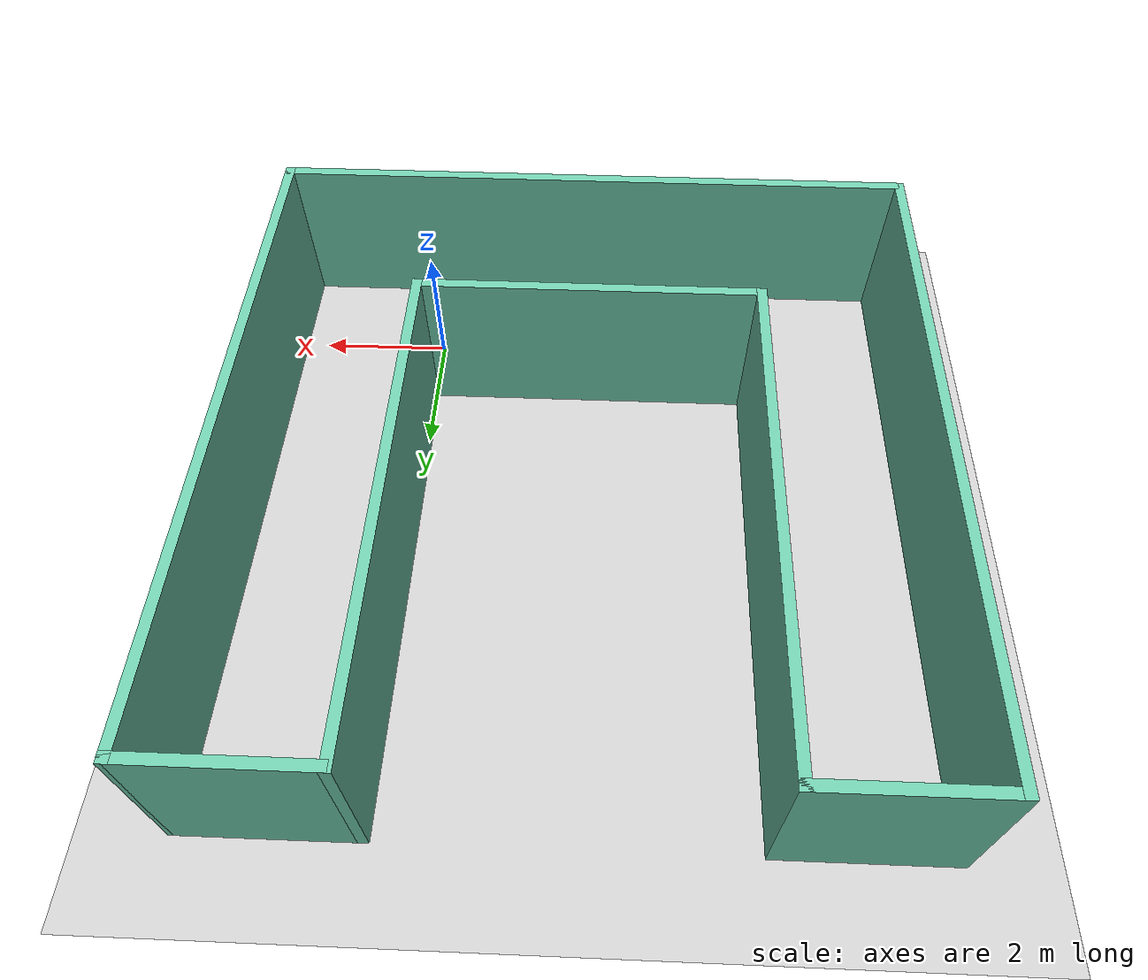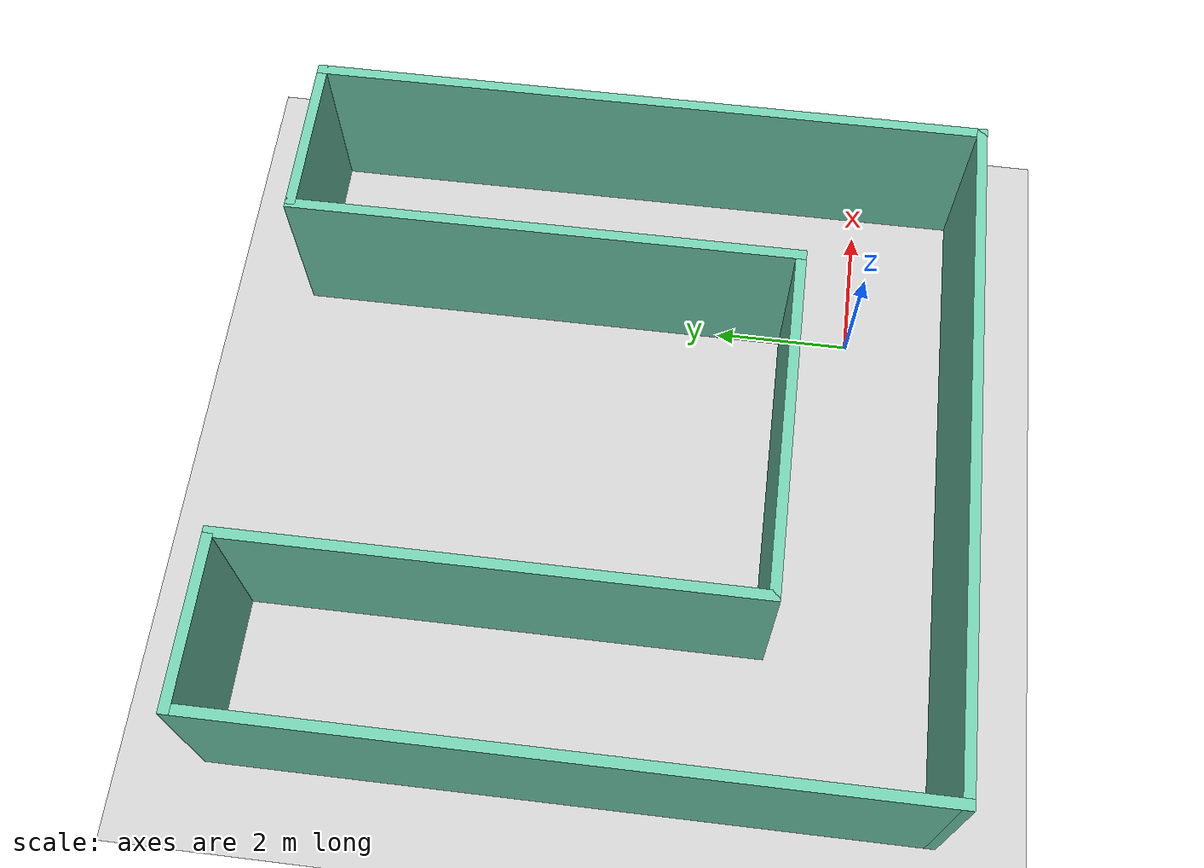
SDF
<sdf version="1.6">
 <world name="default">
  <light name="sun" type="directional">
   <pose>0 0 15 0 -0 0</pose>
   <diffuse>0.8 0.8 0.8 1</diffuse>
   <specular>0.2 0.2 0.2 1</specular>
   <attenuation>
    <range>1000</range>
    <constant>0.9</constant>
    <linear>0.01</linear>
    <quadratic>0.001</quadratic>
   </attenuation>
   <direction>-0.5 0.1 -0.9</direction>
  </light>
  <model name="ground_plane">
   <static>1</static>
   <link name="link">
    <collision name="collision">
     <geometry><plane><normal>0 0 1</normal><size>100 100</size></plane></geometry>
     <surface><friction><ode><mu>100</mu><mu2>50</mu2></ode></friction></surface>
    </collision>
    <visual name="visual">
     <cast_shadows>0</cast_shadows>
     <geometry><plane><normal>0 0 1</normal><size>100 100</size></plane></geometry>
     <material>
      <script><uri>file://media/materials/scripts/gazebo.material</uri><name>Gazebo/Grey</name></script>
     </material>
    </visual>
   </link>
  </model>
  <gravity>0 0 -9.8</gravity>
  <magnetic_field>6e-06 2.3e-05 -4.2e-05</magnetic_field>
  <atmosphere type="adiabatic"/>
  <physics name="default_physics" default="0" type="ode">
   <max_step_size>0.001</max_step_size>
   <real_time_factor>1</real_time_factor>
   <real_time_update_rate>1000</real_time_update_rate>
  </physics>
  <scene><ambient>0.4 0.4 0.4 1</ambient><background>0.7 0.7 0.7 1</background><shadows>1</shadows></scene>
  <spherical_coordinates>
   <surface_model>EARTH_WGS84</surface_model>
   <latitude_deg>0</latitude_deg>
   <longitude_deg>0</longitude_deg>
   <elevation>0</elevation>
   <heading_deg>0</heading_deg>
  </spherical_coordinates>
  <model name="u-building">
   <pose>-2.48696 3.39142 0 0 -0 0</pose>
   <link name="Wall_25">
    <collision name="Wall_25_Collision">
     <geometry><box><size>10 0.15 2.5</size></box></geometry>
     <pose>0 0 1.25 0 -0 0</pose>
    </collision>
    <visual name="Wall_25_Visual">
     <pose>0 0 1.25 0 -0 0</pose>
     <geometry><box><size>10 0.15 2.5</size></box></geometry>
     <material>
      <script><uri>file://media/materials/scripts/gazebo.material</uri><name>Gazebo/Grey</name></script>
      <ambient>0.435294 0.796078 0.67451 1</ambient>
     </material>
     <meta><layer>0</layer></meta>
    </visual>
    <pose>-4.925 -4.3e-05 0 0 -0 1.5708</pose>
   </link>
   <link name="Wall_29">
    <collision name="Wall_29_Collision">
     <geometry><box><size>10 0.15 2.5</size></box></geometry>
     <pose>0 0 1.25 0 -0 0</pose>
    </collision>
    <visual name="Wall_29_Visual">
     <pose>0 0 1.25 0 -0 0</pose>
     <geometry><box><size>10 0.15 2.5</size></box></geometry>
     <material>
      <script><uri>file://media/materials/scripts/gazebo.material</uri><name>Gazebo/Grey</name></script>
      <ambient>0.435294 0.796078 0.67451 1</ambient>
     </material>
     <meta><layer>0</layer></meta>
    </visual>
    <pose>0 -4.92504 0 0 -0 0</pose>
   </link>
   <link name="Wall_30">
    <collision name="Wall_30_Collision">
     <geometry><box><size>10 0.15 2.5</size></box></geometry>
     <pose>0 0 1.25 0 -0 0</pose>
    </collision>
    <visual name="Wall_30_Visual">
     <pose>0 0 1.25 0 -0 0</pose>
     <geometry><box><size>10 0.15 2.5</size></box></geometry>
     <material>
      <script><uri>file://media/materials/scripts/gazebo.material</uri><name>Gazebo/Grey</name></script>
      <ambient>0.435294 0.796078 0.67451 1</ambient>
     </material>
     <meta><layer>0</layer></meta>
    </visual>
    <pose>4.925 -4.3e-05 0 0 -0 1.5708</pose>
   </link>
   <link name="Wall_31">
    <collision name="Wall_31_Collision">
     <geometry><box><size>2.5 0.15 2.5</size></box></geometry>
     <pose>0 0 1.25 0 -0 0</pose>
    </collision>
    <visual name="Wall_31_Visual">
     <pose>0 0 1.25 0 -0 0</pose>
     <geometry><box><size>2.5 0.15 2.5</size></box></geometry>
     <material>
      <script><uri>file://media/materials/scripts/gazebo.material</uri><name>Gazebo/Grey</name></script>
      <ambient>0.435294 0.796078 0.67451 1</ambient>
     </material>
     <meta><layer>0</layer></meta>
    </visual>
    <pose>3.75 4.92496 0 0 -0 3.14159</pose>
   </link>
   <link name="Wall_33">
    <collision name="Wall_33_Collision">
     <geometry><box><size>2.5 0.15 2.5</size></box></geometry>
     <pose>0 0 1.25 0 -0 0</pose>
    </collision>
    <visual name="Wall_33_Visual">
     <pose>0 0 1.25 0 -0 0</pose>
     <geometry><box><size>2.5 0.15 2.5</size></box></geometry>
     <material>
      <script><uri>file://media/materials/scripts/gazebo.material</uri><name>Gazebo/Grey</name></script>
      <ambient>0.435294 0.796078 0.67451 1</ambient>
     </material>
     <meta><layer>0</layer></meta>
    </visual>
    <pose>-3.75 4.92496 0 0 -0 0</pose>
   </link>
   <link name="Wall_34">
    <collision name="Wall_34_Collision">
     <geometry><box><size>7.5 0.15 2.5</size></box></geometry>
     <pose>0 0 1.25 0 -0 0</pose>
    </collision>
    <visual name="Wall_34_Visual">
     <pose>0 0 1.25 0 -0 0</pose>
     <geometry><box><size>7.5 0.15 2.5</size></box></geometry>
     <material>
      <script><uri>file://media/materials/scripts/gazebo.material</uri><name>Gazebo/Grey</name></script>
      <ambient>0.435294 0.796078 0.67451 1</ambient>
     </material>
     <meta><layer>0</layer></meta>
    </visual>
    <pose>-2.575 1.24996 0 0 0 -1.5708</pose>
   </link>
   <link name="Wall_35">
    <collision name="Wall_35_Collision">
     <geometry><box><size>5.25 0.15 2.5</size></box></geometry>
     <pose>0 0 1.25 0 -0 0</pose>
    </collision>
    <visual name="Wall_35_Visual">
     <pose>0 0 1.25 0 -0 0</pose>
     <geometry><box><size>5.25 0.15 2.5</size></box></geometry>
     <material>
      <script><uri>file://media/materials/scripts/gazebo.material</uri><name>Gazebo/Grey</name></script>
      <ambient>0.435294 0.796078 0.67451 1</ambient>
     </material>
     <meta><layer>0</layer></meta>
    </visual>
    <pose>-0.025 -2.42504 0 0 -0 0</pose>
   </link>
   <link name="Wall_36">
    <collision name="Wall_36_Collision">
     <geometry><box><size>7.50017 0.15 2.5</size></box></geometry>
     <pose>0 0 1.25 0 -0 0</pose>
    </collision>
    <visual name="Wall_36_Visual">
     <pose>0 0 1.25 0 -0 0</pose>
     <geometry><box><size>7.50017 0.15 2.5</size></box></geometry>
     <material>
      <script><uri>file://media/materials/scripts/gazebo.material</uri><name>Gazebo/Grey</name></script>
      <ambient>0.435294 0.796078 0.67451 1</ambient>
     </material>
     <meta><layer>0</layer></meta>
    </visual>
    <pose>2.525 1.24996 0 0 -0 1.5708</pose>
   </link>
   <static>1</static>
  </model>
 </world>
</sdf>
